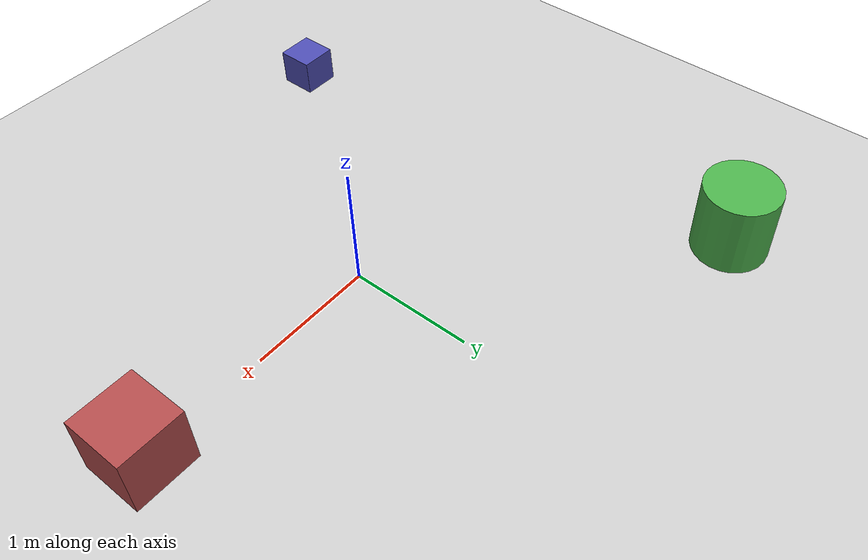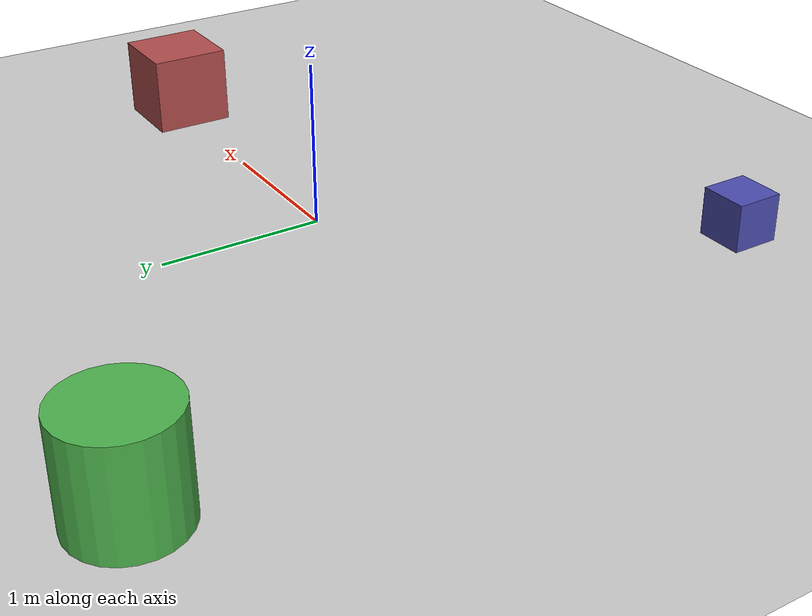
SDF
<?xml version="1.0" ?>
<sdf version="1.6">
  <world name="lightweight_world">

    <!-- ===== 物理エンジン最適化 ===== -->
    <physics type="ode">
      <!-- ステップサイズを大きくしてCPU負荷削減 -->
      <max_step_size>0.004</max_step_size>
      <!-- リアルタイム更新レート削減 -->
      <real_time_update_rate>250</real_time_update_rate>
      <real_time_factor>1.0</real_time_factor>

      <!-- 物理演算の精度を下げて高速化 -->
      <ode>
        <solver>
          <type>quick</type>
          <iters>10</iters>
          <sor>1.0</sor>
        </solver>
        <constraints>
          <cfm>0.0</cfm>
          <erp>0.2</erp>
          <contact_max_correcting_vel>100.0</contact_max_correcting_vel>
          <contact_surface_layer>0.001</contact_surface_layer>
        </constraints>
      </ode>
    </physics>

    <!-- ===== 太陽光(簡易) ===== -->
    <light type="directional" name="sun">
      <cast_shadows>false</cast_shadows>
      <pose>0 0 10 0 0 0</pose>
      <diffuse>0.8 0.8 0.8 1</diffuse>
      <specular>0.2 0.2 0.2 1</specular>
      <attenuation>
        <range>1000</range>
        <constant>0.9</constant>
        <linear>0.01</linear>
        <quadratic>0.001</quadratic>
      </attenuation>
      <direction>-0.5 0.1 -0.9</direction>
    </light>

    <!-- ===== 地面(シンプル) ===== -->
    <model name="ground_plane">
      <static>true</static>
      <link name="link">
        <collision name="collision">
          <geometry>
            <plane>
              <normal>0 0 1</normal>
              <size>100 100</size>
            </plane>
          </geometry>
          <surface>
            <friction>
              <ode>
                <mu>100</mu>
                <mu2>50</mu2>
              </ode>
            </friction>
          </surface>
        </collision>
        <visual name="visual">
          <cast_shadows>false</cast_shadows>
          <geometry>
            <plane>
              <normal>0 0 1</normal>
              <size>100 100</size>
            </plane>
          </geometry>
          <material>
            <ambient>0.8 0.8 0.8 1</ambient>
            <diffuse>0.8 0.8 0.8 1</diffuse>
            <specular>0 0 0 1</specular>
          </material>
        </visual>
      </link>
    </model>

    <!-- ===== 最小限の障害物(3個) ===== -->

    <!-- 障害物1: ボックス -->
    <model name="box1">
      <static>true</static>
      <pose>2.0 0 0.25 0 0 0</pose>
      <link name="link">
        <collision name="collision">
          <geometry>
            <box>
              <size>0.5 0.5 0.5</size>
            </box>
          </geometry>
        </collision>
        <visual name="visual">
          <cast_shadows>false</cast_shadows>
          <geometry>
            <box>
              <size>0.5 0.5 0.5</size>
            </box>
          </geometry>
          <material>
            <ambient>0.7 0.3 0.3 1</ambient>
            <diffuse>0.7 0.3 0.3 1</diffuse>
            <specular>0 0 0 1</specular>
          </material>
        </visual>
      </link>
    </model>

    <!-- 障害物2: 円柱 -->
    <model name="cylinder1">
      <static>true</static>
      <pose>-2.0 2.0 0.3 0 0 0</pose>
      <link name="link">
        <collision name="collision">
          <geometry>
            <cylinder>
              <radius>0.3</radius>
              <length>0.6</length>
            </cylinder>
          </geometry>
        </collision>
        <visual name="visual">
          <cast_shadows>false</cast_shadows>
          <geometry>
            <cylinder>
              <radius>0.3</radius>
              <length>0.6</length>
            </cylinder>
          </geometry>
          <material>
            <ambient>0.3 0.7 0.3 1</ambient>
            <diffuse>0.3 0.7 0.3 1</diffuse>
            <specular>0 0 0 1</specular>
          </material>
        </visual>
      </link>
    </model>

    <!-- 障害物3: 小ボックス -->
    <model name="box2">
      <static>true</static>
      <pose>-1.5 -2.0 0.15 0 0 0</pose>
      <link name="link">
        <collision name="collision">
          <geometry>
            <box>
              <size>0.3 0.3 0.3</size>
            </box>
          </geometry>
        </collision>
        <visual name="visual">
          <cast_shadows>false</cast_shadows>
          <geometry>
            <box>
              <size>0.3 0.3 0.3</size>
            </box>
          </geometry>
          <material>
            <ambient>0.3 0.3 0.7 1</ambient>
            <diffuse>0.3 0.3 0.7 1</diffuse>
            <specular>0 0 0 1</specular>
          </material>
        </visual>
      </link>
    </model>

    <!-- ===== シーン設定(軽量) ===== -->
    <scene>
      <ambient>0.5 0.5 0.5 1</ambient>
      <background>0.7 0.7 0.7 1</background>
      <shadows>false</shadows>
      <grid>false</grid>
    </scene>

    <!-- ===== GUI設定(軽量) ===== -->
    <gui fullscreen='0'>
      <camera name='user_camera'>
        <pose>0 -8 4 0 0.4 1.57</pose>
        <view_controller>orbit</view_controller>
        <projection_type>perspective</projection_type>
      </camera>
    </gui>

  </world>
</sdf>
